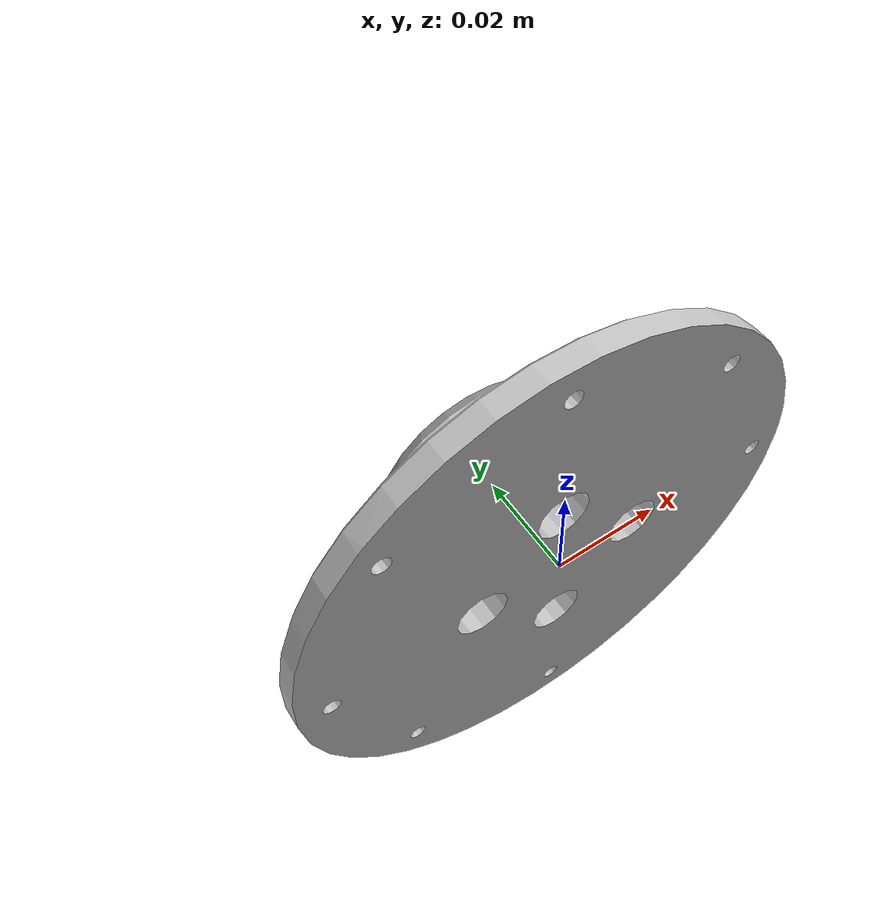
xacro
<?xml version="1.0" encoding="utf-8"?>
<robot
  name="coupling1"
  xmlns:xacro="http://www.ros.org/wiki/xacro">
  <link
    name="link_coupling1">
    <inertial>
      <origin
        xyz="1.77823331599424E-05 -1.77823331599619E-05 -0.0089016237884829"
        rpy="0 0 0" />
      <mass
        value="0.0748232729606399" />
      <inertia
        ixx="3.39450510121467E-05"
        ixy="4.13727922672199E-08"
        ixz="-8.51756765772707E-09"
        iyy="3.39450510121467E-05"
        iyz="8.51756765772627E-09"
        izz="5.88806034471799E-05" />
    </inertial>
    <visual>
      <origin
        xyz="0 0 0"
        rpy="0 0 0" />
      <geometry>
        <mesh
          filename="package://system_urdf/meshes/roller_probe_pieces/coupling1.STL" />
      </geometry>
      <material
        name="">
        <color
          rgba="0.749019607843137 0.749019607843137 0.749019607843137 1" />
      </material>
    </visual>
    <collision>
      <origin
        xyz="0 0 0"
        rpy="0 0 0" />
      <geometry>
        <mesh
          filename="package://system_urdf/meshes/roller_probe_pieces/coupling1.STL" />
      </geometry>
    </collision>
  </link>
</robot>
